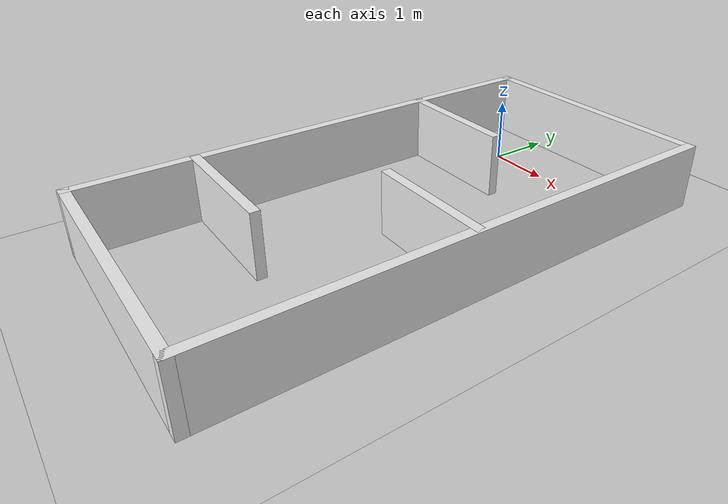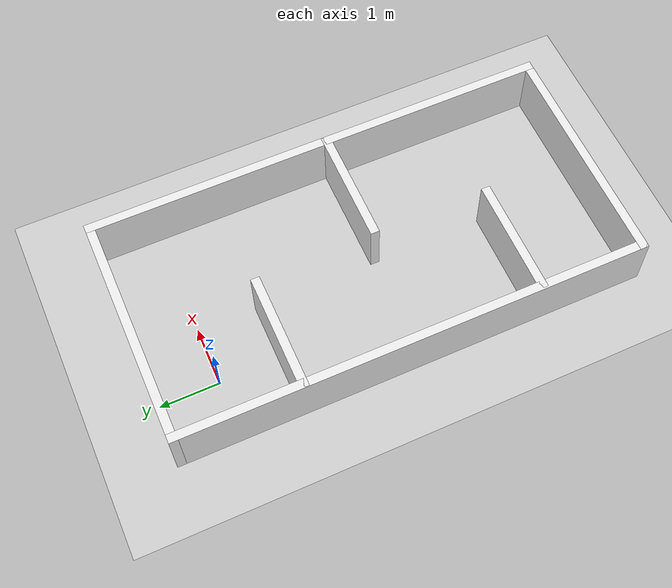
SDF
<sdf version="1.4">
  <world name="default">

    <scene>
      <ambient>0.4 0.4 0.4 1</ambient>
      <background>0.7 0.7 0.7 1</background>
      <shadows>true</shadows>
    </scene>

    <!-- A global light source -->
    <include>
      <uri>model://sun</uri>
    </include>

    <!-- A ground plane -->
    <include>
      <uri>model://ground_plane</uri>
    </include>

    <physics type="ode">
      <real_time_update_rate>1000.0</real_time_update_rate>
      <max_step_size>0.001</max_step_size>
      <real_time_factor>1</real_time_factor>
      <ode>
        <solver>
          <type>quick</type>
          <iters>150</iters>
          <precon_iters>0</precon_iters>
          <sor>1.400000</sor>
          <use_dynamic_moi_rescaling>1</use_dynamic_moi_rescaling>
        </solver>
        <constraints>
          <cfm>0.00001</cfm>
          <erp>0.2</erp>
          <contact_max_correcting_vel>2000.000000</contact_max_correcting_vel>
          <contact_surface_layer>0.01000</contact_surface_layer>
        </constraints>
      </ode>
    </physics>

  <model name='world1.world'>
    <pose>0.975 -2.923 0 0 -0 0</pose>
    <link name='Wall_20'>
      <collision name='Wall_20_Collision'>
        <geometry>
          <box>
            <size>4 0.15 1</size>
          </box>
        </geometry>
        <pose>0 0 0.5 0 -0 0</pose>
      </collision>
      <visual name='Wall_20_Visual'>
        <pose>0 0 0.5 0 -0 0</pose>
        <geometry>
          <box>
            <size>4 0.15 1</size>
          </box>
        </geometry>
        <material>
          <script>
            <uri>file://media/materials/scripts/gazebo.material</uri>
            <name>Gazebo/White</name>
          </script>
          <ambient>1 0.764706 0.305882 1</ambient>
        </material>
        <meta>
          <layer>0</layer>
        </meta>
      </visual>
      <pose>-0 3.925 0 0 -0 3.14159</pose>
    </link>
    <link name='Wall_24'>
      <collision name='Wall_24_Collision'>
        <geometry>
          <box>
            <size>8 0.15 1</size>
          </box>
        </geometry>
        <pose>0 0 0.5 0 -0 0</pose>
      </collision>
      <visual name='Wall_24_Visual'>
        <pose>0 0 0.5 0 -0 0</pose>
        <geometry>
          <box>
            <size>8 0.15 1</size>
          </box>
        </geometry>
        <material>
          <script>
            <uri>file://media/materials/scripts/gazebo.material</uri>
            <name>Gazebo/White</name>
          </script>
          <ambient>1 0.764706 0.305882 1</ambient>
        </material>
        <meta>
          <layer>0</layer>
        </meta>
      </visual>
      <pose>1.925 -0 0 0 -0 -1.5708</pose>
    </link>
    <link name='Wall_28'>
      <collision name='Wall_28_Collision'>
        <geometry>
          <box>
            <size>2 0.15 1</size>
          </box>
        </geometry>
        <pose>0 0 0.5 0 -0 0</pose>
      </collision>
      <visual name='Wall_28_Visual'>
        <pose>0 0 0.5 0 -0 0</pose>
        <geometry>
          <box>
            <size>2 0.15 1</size>
          </box>
        </geometry>
        <material>
          <script>
            <uri>file://media/materials/scripts/gazebo.material</uri>
            <name>Gazebo/White</name>
          </script>
          <ambient>1 0.764706 0.305882 1</ambient>
        </material>
        <meta>
          <layer>0</layer>
        </meta>
      </visual>
      <pose>-0.99 1.865 0 0 -0 0</pose>
    </link>
    <link name='Wall_30'>
      <collision name='Wall_30_Collision'>
        <geometry>
          <box>
            <size>2 0.15 1</size>
          </box>
        </geometry>
        <pose>0 0 0.5 0 -0 0</pose>
      </collision>
      <visual name='Wall_30_Visual'>
        <pose>0 0 0.5 0 -0 0</pose>
        <geometry>
          <box>
            <size>2 0.15 1</size>
          </box>
        </geometry>
        <material>
          <script>
            <uri>file://media/materials/scripts/gazebo.material</uri>
            <name>Gazebo/White</name>
          </script>
          <ambient>1 0.764706 0.305882 1</ambient>
        </material>
        <meta>
          <layer>0</layer>
        </meta>
      </visual>
      <pose>0.99 -0.175 0 0 -0 0</pose>
    </link>
    <link name='Wall_32'>
      <collision name='Wall_32_Collision'>
        <geometry>
          <box>
            <size>2 0.15 1</size>
          </box>
        </geometry>
        <pose>0 0 0.5 0 -0 0</pose>
      </collision>
      <visual name='Wall_32_Visual'>
        <pose>0 0 0.5 0 -0 0</pose>
        <geometry>
          <box>
            <size>2 0.15 1</size>
          </box>
        </geometry>
        <material>
          <script>
            <uri>file://media/materials/scripts/gazebo.material</uri>
            <name>Gazebo/White</name>
          </script>
          <ambient>1 0.764706 0.305882 1</ambient>
        </material>
        <meta>
          <layer>0</layer>
        </meta>
      </visual>
      <pose>-0.974 -2.145 0 0 -0 3.14159</pose>
    </link>
    <link name='Wall_34'>
      <collision name='Wall_34_Collision'>
        <geometry>
          <box>
            <size>8 0.15 1</size>
          </box>
        </geometry>
        <pose>0 0 0.5 0 -0 0</pose>
      </collision>
      <visual name='Wall_34_Visual'>
        <pose>0 0 0.5 0 -0 0</pose>
        <geometry>
          <box>
            <size>8 0.15 1</size>
          </box>
        </geometry>
        <material>
          <script>
            <uri>file://media/materials/scripts/gazebo.material</uri>
            <name>Gazebo/White</name>
          </script>
          <ambient>1 0.764706 0.305882 1</ambient>
        </material>
        <meta>
          <layer>0</layer>
        </meta>
      </visual>
      <pose>-1.925 -0 0 0 -0 -1.5708</pose>
    </link>
    <link name='Wall_36'>
      <collision name='Wall_36_Collision'>
        <geometry>
          <box>
            <size>4 0.15 1</size>
          </box>
        </geometry>
        <pose>0 0 0.5 0 -0 0</pose>
      </collision>
      <visual name='Wall_36_Visual'>
        <pose>0 0 0.5 0 -0 0</pose>
        <geometry>
          <box>
            <size>4 0.15 1</size>
          </box>
        </geometry>
        <material>
          <script>
            <uri>file://media/materials/scripts/gazebo.material</uri>
            <name>Gazebo/White</name>
          </script>
          <ambient>1 0.764706 0.305882 1</ambient>
        </material>
        <meta>
          <layer>0</layer>
        </meta>
      </visual>
      <pose>-0 -3.925 0 0 -0 0</pose>
    </link>
    <static>1</static>
  </model>
  </world>

</sdf>
